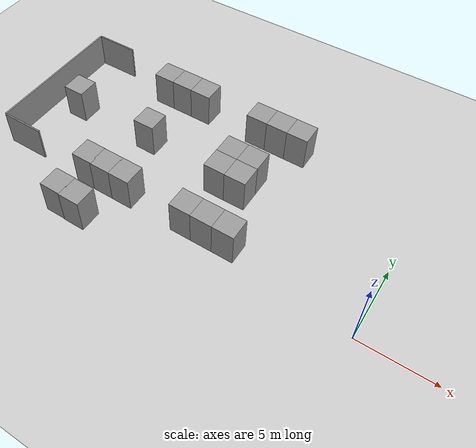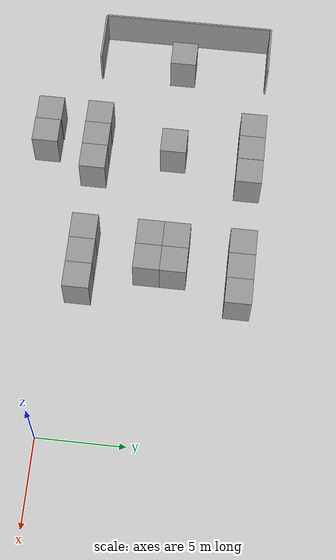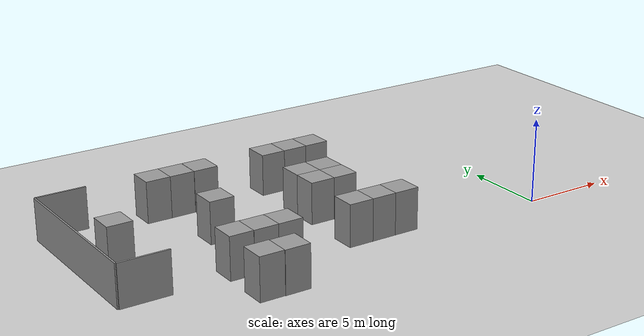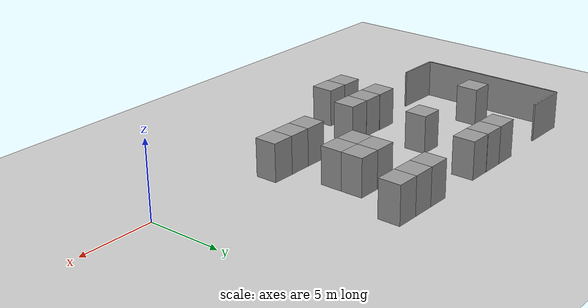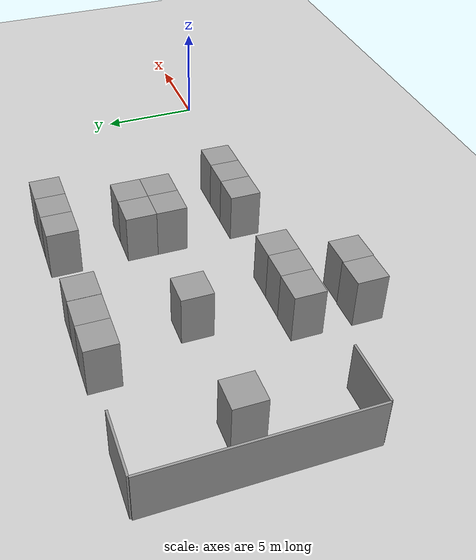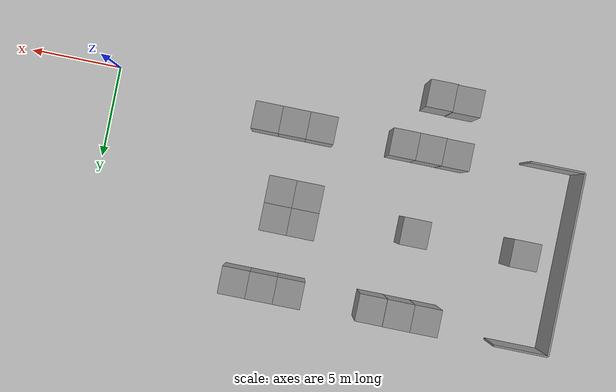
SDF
<sdf version="1.6">
 <world name="default">
  <model name="ground_plane">
   <static>1</static>
   <link name="link">
    <collision name="collision">
     <geometry><plane><normal>0 0 1</normal><size>100 100</size></plane></geometry>
     <surface><friction><ode><mu>100</mu><mu2>50</mu2></ode></friction></surface>
    </collision>
    <visual name="visual">
     <cast_shadows>0</cast_shadows>
     <geometry><plane><normal>0 0 1</normal><size>100 100</size></plane></geometry>
     <material>
      <script><uri>file://media/materials/scripts/gazebo.material</uri><name>Gazebo/Grey</name></script>
     </material>
    </visual>
   </link>
  </model>
  <model name="wall_1.5_1.5_96">
   <link name="Wall_2">
    <inertial>
     <mass>10</mass>
     <inertia><ixx>1</ixx><ixy>0</ixy><ixz>0</ixz><iyy>1</iyy><iyz>0</iyz><izz>1</izz></inertia>
    </inertial>
    <visual name="Wall_2_Visual">
     <pose>0 0 1.25 0 -0 0</pose>
     <geometry><box><size>1.5 1.5 2.5</size></box></geometry>
     <material>
      <script><uri>file://media/materials/scripts/gazebo.material</uri><name>Gazebo/Grey</name></script>
      <ambient>1 1 1 1</ambient>
      <diffuse>0.7 0.7 0.7 1</diffuse>
      <specular>0.01 0.01 0.01 1</specular>
      <emissive>0 0 0 1</emissive>
      <shader type="vertex"><normal_map>__default__</normal_map></shader>
     </material>
    </visual>
    <collision name="Wall_2_Collision">
     <pose>0 0 1.25 0 -0 0</pose>
     <geometry><box><size>1.5 1.5 2.5</size></box></geometry>
     <surface>
      <friction>
       <ode><mu>1</mu><mu2>1</mu2><fdir1>0 0 0</fdir1><slip1>0</slip1><slip2>0</slip2></ode>
       <torsional>
        <coefficient>1</coefficient>
        <patch_radius>0</patch_radius>
        <surface_radius>0</surface_radius>
        <use_patch_radius>1</use_patch_radius>
        <ode><slip>0</slip></ode>
       </torsional>
      </friction>
      <bounce><restitution_coefficient>0</restitution_coefficient><threshold>1e+06</threshold></bounce>
      <contact>
       <collide_without_contact>0</collide_without_contact>
       <collide_without_contact_bitmask>1</collide_without_contact_bitmask>
       <collide_bitmask>1</collide_bitmask>
       <ode>
        <soft_cfm>0</soft_cfm>
        <soft_erp>0.2</soft_erp>
        <kp>1e+13</kp>
        <kd>1</kd>
        <max_vel>0.01</max_vel>
        <min_depth>0</min_depth>
       </ode>
       <bullet>
        <split_impulse>1</split_impulse>
        <split_impulse_penetration_threshold>-0.01</split_impulse_penetration_threshold>
        <soft_cfm>0</soft_cfm>
        <soft_erp>0.2</soft_erp>
        <kp>1e+13</kp>
        <kd>1</kd>
       </bullet>
      </contact>
     </surface>
    </collision>
   </link>
   <static>1</static>
   <pose>-8.75 1.25 0 0 -0 0</pose>
  </model>
  <model name="wall_1.5_1.5_99">
   <link name="Wall_2">
    <inertial>
     <mass>10</mass>
     <inertia><ixx>1</ixx><ixy>0</ixy><ixz>0</ixz><iyy>1</iyy><iyz>0</iyz><izz>1</izz></inertia>
    </inertial>
    <visual name="Wall_2_Visual">
     <pose>0 0 1.25 0 -0 0</pose>
     <geometry><box><size>1.5 1.5 2.5</size></box></geometry>
     <material>
      <script><uri>file://media/materials/scripts/gazebo.material</uri><name>Gazebo/Grey</name></script>
      <ambient>1 1 1 1</ambient>
      <diffuse>0.7 0.7 0.7 1</diffuse>
      <specular>0.01 0.01 0.01 1</specular>
      <emissive>0 0 0 1</emissive>
      <shader type="vertex"><normal_map>__default__</normal_map></shader>
     </material>
    </visual>
    <collision name="Wall_2_Collision">
     <pose>0 0 1.25 0 -0 0</pose>
     <geometry><box><size>1.5 1.5 2.5</size></box></geometry>
     <surface>
      <friction>
       <ode><mu>1</mu><mu2>1</mu2><fdir1>0 0 0</fdir1><slip1>0</slip1><slip2>0</slip2></ode>
       <torsional>
        <coefficient>1</coefficient>
        <patch_radius>0</patch_radius>
        <surface_radius>0</surface_radius>
        <use_patch_radius>1</use_patch_radius>
        <ode><slip>0</slip></ode>
       </torsional>
      </friction>
      <bounce><restitution_coefficient>0</restitution_coefficient><threshold>1e+06</threshold></bounce>
      <contact>
       <collide_without_contact>0</collide_without_contact>
       <collide_without_contact_bitmask>1</collide_without_contact_bitmask>
       <collide_bitmask>1</collide_bitmask>
       <ode>
        <soft_cfm>0</soft_cfm>
        <soft_erp>0.2</soft_erp>
        <kp>1e+13</kp>
        <kd>1</kd>
        <max_vel>0.01</max_vel>
        <min_depth>0</min_depth>
       </ode>
       <bullet>
        <split_impulse>1</split_impulse>
        <split_impulse_penetration_threshold>-0.01</split_impulse_penetration_threshold>
        <soft_cfm>0</soft_cfm>
        <soft_erp>0.2</soft_erp>
        <kp>1e+13</kp>
        <kd>1</kd>
       </bullet>
      </contact>
     </surface>
    </collision>
   </link>
   <static>1</static>
   <pose>-10.25 1.25 0 0 -0 0</pose>
  </model>
  <model name="wall_1.5_1.5_100">
   <link name="Wall_2">
    <inertial>
     <mass>10</mass>
     <inertia><ixx>1</ixx><ixy>0</ixy><ixz>0</ixz><iyy>1</iyy><iyz>0</iyz><izz>1</izz></inertia>
    </inertial>
    <visual name="Wall_2_Visual">
     <pose>0 0 1.25 0 -0 0</pose>
     <geometry><box><size>1.5 1.5 2.5</size></box></geometry>
     <material>
      <script><uri>file://media/materials/scripts/gazebo.material</uri><name>Gazebo/Grey</name></script>
      <ambient>1 1 1 1</ambient>
      <diffuse>0.7 0.7 0.7 1</diffuse>
      <specular>0.01 0.01 0.01 1</specular>
      <emissive>0 0 0 1</emissive>
      <shader type="vertex"><normal_map>__default__</normal_map></shader>
     </material>
    </visual>
    <collision name="Wall_2_Collision">
     <pose>0 0 1.25 0 -0 0</pose>
     <geometry><box><size>1.5 1.5 2.5</size></box></geometry>
     <surface>
      <friction>
       <ode><mu>1</mu><mu2>1</mu2><fdir1>0 0 0</fdir1><slip1>0</slip1><slip2>0</slip2></ode>
       <torsional>
        <coefficient>1</coefficient>
        <patch_radius>0</patch_radius>
        <surface_radius>0</surface_radius>
        <use_patch_radius>1</use_patch_radius>
        <ode><slip>0</slip></ode>
       </torsional>
      </friction>
      <bounce><restitution_coefficient>0</restitution_coefficient><threshold>1e+06</threshold></bounce>
      <contact>
       <collide_without_contact>0</collide_without_contact>
       <collide_without_contact_bitmask>1</collide_without_contact_bitmask>
       <collide_bitmask>1</collide_bitmask>
       <ode>
        <soft_cfm>0</soft_cfm>
        <soft_erp>0.2</soft_erp>
        <kp>1e+13</kp>
        <kd>1</kd>
        <max_vel>0.01</max_vel>
        <min_depth>0</min_depth>
       </ode>
       <bullet>
        <split_impulse>1</split_impulse>
        <split_impulse_penetration_threshold>-0.01</split_impulse_penetration_threshold>
        <soft_cfm>0</soft_cfm>
        <soft_erp>0.2</soft_erp>
        <kp>1e+13</kp>
        <kd>1</kd>
       </bullet>
      </contact>
     </surface>
    </collision>
   </link>
   <static>1</static>
   <pose>-11.75 1.25 0 0 -0 0</pose>
  </model>
  <model name="wall_1.5_1.5_103">
   <link name="Wall_2">
    <inertial>
     <mass>10</mass>
     <inertia><ixx>1</ixx><ixy>0</ixy><ixz>0</ixz><iyy>1</iyy><iyz>0</iyz><izz>1</izz></inertia>
    </inertial>
    <visual name="Wall_2_Visual">
     <pose>0 0 1.25 0 -0 0</pose>
     <geometry><box><size>1.5 1.5 2.5</size></box></geometry>
     <material>
      <script><uri>file://media/materials/scripts/gazebo.material</uri><name>Gazebo/Grey</name></script>
      <ambient>1 1 1 1</ambient>
      <diffuse>0.7 0.7 0.7 1</diffuse>
      <specular>0.01 0.01 0.01 1</specular>
      <emissive>0 0 0 1</emissive>
      <shader type="vertex"><normal_map>__default__</normal_map></shader>
     </material>
    </visual>
    <collision name="Wall_2_Collision">
     <pose>0 0 1.25 0 -0 0</pose>
     <geometry><box><size>1.5 1.5 2.5</size></box></geometry>
     <surface>
      <friction>
       <ode><mu>1</mu><mu2>1</mu2><fdir1>0 0 0</fdir1><slip1>0</slip1><slip2>0</slip2></ode>
       <torsional>
        <coefficient>1</coefficient>
        <patch_radius>0</patch_radius>
        <surface_radius>0</surface_radius>
        <use_patch_radius>1</use_patch_radius>
        <ode><slip>0</slip></ode>
       </torsional>
      </friction>
      <bounce><restitution_coefficient>0</restitution_coefficient><threshold>1e+06</threshold></bounce>
      <contact>
       <collide_without_contact>0</collide_without_contact>
       <collide_without_contact_bitmask>1</collide_without_contact_bitmask>
       <collide_bitmask>1</collide_bitmask>
       <ode>
        <soft_cfm>0</soft_cfm>
        <soft_erp>0.2</soft_erp>
        <kp>1e+13</kp>
        <kd>1</kd>
        <max_vel>0.01</max_vel>
        <min_depth>0</min_depth>
       </ode>
       <bullet>
        <split_impulse>1</split_impulse>
        <split_impulse_penetration_threshold>-0.01</split_impulse_penetration_threshold>
        <soft_cfm>0</soft_cfm>
        <soft_erp>0.2</soft_erp>
        <kp>1e+13</kp>
        <kd>1</kd>
       </bullet>
      </contact>
     </surface>
    </collision>
   </link>
   <static>1</static>
   <pose>-10.25 5 0 0 -0 0</pose>
  </model>
  <model name="wall_1.5_1.5_104">
   <link name="Wall_2">
    <inertial>
     <mass>10</mass>
     <inertia><ixx>1</ixx><ixy>0</ixy><ixz>0</ixz><iyy>1</iyy><iyz>0</iyz><izz>1</izz></inertia>
    </inertial>
    <visual name="Wall_2_Visual">
     <pose>0 0 1.25 0 -0 0</pose>
     <geometry><box><size>1.5 1.5 2.5</size></box></geometry>
     <material>
      <script><uri>file://media/materials/scripts/gazebo.material</uri><name>Gazebo/Grey</name></script>
      <ambient>1 1 1 1</ambient>
      <diffuse>0.7 0.7 0.7 1</diffuse>
      <specular>0.01 0.01 0.01 1</specular>
      <emissive>0 0 0 1</emissive>
      <shader type="vertex"><normal_map>__default__</normal_map></shader>
     </material>
    </visual>
    <collision name="Wall_2_Collision">
     <pose>0 0 1.25 0 -0 0</pose>
     <geometry><box><size>1.5 1.5 2.5</size></box></geometry>
     <surface>
      <friction>
       <ode><mu>1</mu><mu2>1</mu2><fdir1>0 0 0</fdir1><slip1>0</slip1><slip2>0</slip2></ode>
       <torsional>
        <coefficient>1</coefficient>
        <patch_radius>0</patch_radius>
        <surface_radius>0</surface_radius>
        <use_patch_radius>1</use_patch_radius>
        <ode><slip>0</slip></ode>
       </torsional>
      </friction>
      <bounce><restitution_coefficient>0</restitution_coefficient><threshold>1e+06</threshold></bounce>
      <contact>
       <collide_without_contact>0</collide_without_contact>
       <collide_without_contact_bitmask>1</collide_without_contact_bitmask>
       <collide_bitmask>1</collide_bitmask>
       <ode>
        <soft_cfm>0</soft_cfm>
        <soft_erp>0.2</soft_erp>
        <kp>1e+13</kp>
        <kd>1</kd>
        <max_vel>0.01</max_vel>
        <min_depth>0</min_depth>
       </ode>
       <bullet>
        <split_impulse>1</split_impulse>
        <split_impulse_penetration_threshold>-0.01</split_impulse_penetration_threshold>
        <soft_cfm>0</soft_cfm>
        <soft_erp>0.2</soft_erp>
        <kp>1e+13</kp>
        <kd>1</kd>
       </bullet>
      </contact>
     </surface>
    </collision>
   </link>
   <static>1</static>
   <pose>-11.75 5 0 0 -0 0</pose>
  </model>
  <model name="wall_1.5_1.5_105">
   <link name="Wall_2">
    <inertial>
     <mass>10</mass>
     <inertia><ixx>1</ixx><ixy>0</ixy><ixz>0</ixz><iyy>1</iyy><iyz>0</iyz><izz>1</izz></inertia>
    </inertial>
    <visual name="Wall_2_Visual">
     <pose>0 0 1.25 0 -0 0</pose>
     <geometry><box><size>1.5 1.5 2.5</size></box></geometry>
     <material>
      <script><uri>file://media/materials/scripts/gazebo.material</uri><name>Gazebo/Grey</name></script>
      <ambient>1 1 1 1</ambient>
      <diffuse>0.7 0.7 0.7 1</diffuse>
      <specular>0.01 0.01 0.01 1</specular>
      <emissive>0 0 0 1</emissive>
      <shader type="vertex"><normal_map>__default__</normal_map></shader>
     </material>
    </visual>
    <collision name="Wall_2_Collision">
     <pose>0 0 1.25 0 -0 0</pose>
     <geometry><box><size>1.5 1.5 2.5</size></box></geometry>
     <surface>
      <friction>
       <ode><mu>1</mu><mu2>1</mu2><fdir1>0 0 0</fdir1><slip1>0</slip1><slip2>0</slip2></ode>
       <torsional>
        <coefficient>1</coefficient>
        <patch_radius>0</patch_radius>
        <surface_radius>0</surface_radius>
        <use_patch_radius>1</use_patch_radius>
        <ode><slip>0</slip></ode>
       </torsional>
      </friction>
      <bounce><restitution_coefficient>0</restitution_coefficient><threshold>1e+06</threshold></bounce>
      <contact>
       <collide_without_contact>0</collide_without_contact>
       <collide_without_contact_bitmask>1</collide_without_contact_bitmask>
       <collide_bitmask>1</collide_bitmask>
       <ode>
        <soft_cfm>0</soft_cfm>
        <soft_erp>0.2</soft_erp>
        <kp>1e+13</kp>
        <kd>1</kd>
        <max_vel>0.01</max_vel>
        <min_depth>0</min_depth>
       </ode>
       <bullet>
        <split_impulse>1</split_impulse>
        <split_impulse_penetration_threshold>-0.01</split_impulse_penetration_threshold>
        <soft_cfm>0</soft_cfm>
        <soft_erp>0.2</soft_erp>
        <kp>1e+13</kp>
        <kd>1</kd>
       </bullet>
      </contact>
     </surface>
    </collision>
   </link>
   <static>1</static>
   <pose>-10.25 6.5 0 0 -0 0</pose>
  </model>
  <model name="wall_1.5_1.5_106">
   <link name="Wall_2">
    <inertial>
     <mass>10</mass>
     <inertia><ixx>1</ixx><ixy>0</ixy><ixz>0</ixz><iyy>1</iyy><iyz>0</iyz><izz>1</izz></inertia>
    </inertial>
    <visual name="Wall_2_Visual">
     <pose>0 0 1.25 0 -0 0</pose>
     <geometry><box><size>1.5 1.5 2.5</size></box></geometry>
     <material>
      <script><uri>file://media/materials/scripts/gazebo.material</uri><name>Gazebo/Grey</name></script>
      <ambient>1 1 1 1</ambient>
      <diffuse>0.7 0.7 0.7 1</diffuse>
      <specular>0.01 0.01 0.01 1</specular>
      <emissive>0 0 0 1</emissive>
      <shader type="vertex"><normal_map>__default__</normal_map></shader>
     </material>
    </visual>
    <collision name="Wall_2_Collision">
     <pose>0 0 1.25 0 -0 0</pose>
     <geometry><box><size>1.5 1.5 2.5</size></box></geometry>
     <surface>
      <friction>
       <ode><mu>1</mu><mu2>1</mu2><fdir1>0 0 0</fdir1><slip1>0</slip1><slip2>0</slip2></ode>
       <torsional>
        <coefficient>1</coefficient>
        <patch_radius>0</patch_radius>
        <surface_radius>0</surface_radius>
        <use_patch_radius>1</use_patch_radius>
        <ode><slip>0</slip></ode>
       </torsional>
      </friction>
      <bounce><restitution_coefficient>0</restitution_coefficient><threshold>1e+06</threshold></bounce>
      <contact>
       <collide_without_contact>0</collide_without_contact>
       <collide_without_contact_bitmask>1</collide_without_contact_bitmask>
       <collide_bitmask>1</collide_bitmask>
       <ode>
        <soft_cfm>0</soft_cfm>
        <soft_erp>0.2</soft_erp>
        <kp>1e+13</kp>
        <kd>1</kd>
        <max_vel>0.01</max_vel>
        <min_depth>0</min_depth>
       </ode>
       <bullet>
        <split_impulse>1</split_impulse>
        <split_impulse_penetration_threshold>-0.01</split_impulse_penetration_threshold>
        <soft_cfm>0</soft_cfm>
        <soft_erp>0.2</soft_erp>
        <kp>1e+13</kp>
        <kd>1</kd>
       </bullet>
      </contact>
     </surface>
    </collision>
   </link>
   <static>1</static>
   <pose>-11.75 6.5 0 0 -0 0</pose>
  </model>
  <model name="wall_1.5_1.5_107">
   <link name="Wall_2">
    <inertial>
     <mass>10</mass>
     <inertia><ixx>1</ixx><ixy>0</ixy><ixz>0</ixz><iyy>1</iyy><iyz>0</iyz><izz>1</izz></inertia>
    </inertial>
    <visual name="Wall_2_Visual">
     <pose>0 0 1.25 0 -0 0</pose>
     <geometry><box><size>1.5 1.5 2.5</size></box></geometry>
     <material>
      <script><uri>file://media/materials/scripts/gazebo.material</uri><name>Gazebo/Grey</name></script>
      <ambient>1 1 1 1</ambient>
      <diffuse>0.7 0.7 0.7 1</diffuse>
      <specular>0.01 0.01 0.01 1</specular>
      <emissive>0 0 0 1</emissive>
      <shader type="vertex"><normal_map>__default__</normal_map></shader>
     </material>
    </visual>
    <collision name="Wall_2_Collision">
     <pose>0 0 1.25 0 -0 0</pose>
     <geometry><box><size>1.5 1.5 2.5</size></box></geometry>
     <surface>
      <friction>
       <ode><mu>1</mu><mu2>1</mu2><fdir1>0 0 0</fdir1><slip1>0</slip1><slip2>0</slip2></ode>
       <torsional>
        <coefficient>1</coefficient>
        <patch_radius>0</patch_radius>
        <surface_radius>0</surface_radius>
        <use_patch_radius>1</use_patch_radius>
        <ode><slip>0</slip></ode>
       </torsional>
      </friction>
      <bounce><restitution_coefficient>0</restitution_coefficient><threshold>1e+06</threshold></bounce>
      <contact>
       <collide_without_contact>0</collide_without_contact>
       <collide_without_contact_bitmask>1</collide_without_contact_bitmask>
       <collide_bitmask>1</collide_bitmask>
       <ode>
        <soft_cfm>0</soft_cfm>
        <soft_erp>0.2</soft_erp>
        <kp>1e+13</kp>
        <kd>1</kd>
        <max_vel>0.01</max_vel>
        <min_depth>0</min_depth>
       </ode>
       <bullet>
        <split_impulse>1</split_impulse>
        <split_impulse_penetration_threshold>-0.01</split_impulse_penetration_threshold>
        <soft_cfm>0</soft_cfm>
        <soft_erp>0.2</soft_erp>
        <kp>1e+13</kp>
        <kd>1</kd>
       </bullet>
      </contact>
     </surface>
    </collision>
   </link>
   <static>1</static>
   <pose>-8.75 10.25 0 0 -0 0</pose>
  </model>
  <model name="wall_1.5_1.5_108">
   <link name="Wall_2">
    <inertial>
     <mass>10</mass>
     <inertia><ixx>1</ixx><ixy>0</ixy><ixz>0</ixz><iyy>1</iyy><iyz>0</iyz><izz>1</izz></inertia>
    </inertial>
    <visual name="Wall_2_Visual">
     <pose>0 0 1.25 0 -0 0</pose>
     <geometry><box><size>1.5 1.5 2.5</size></box></geometry>
     <material>
      <script><uri>file://media/materials/scripts/gazebo.material</uri><name>Gazebo/Grey</name></script>
      <ambient>1 1 1 1</ambient>
      <diffuse>0.7 0.7 0.7 1</diffuse>
      <specular>0.01 0.01 0.01 1</specular>
      <emissive>0 0 0 1</emissive>
      <shader type="vertex"><normal_map>__default__</normal_map></shader>
     </material>
    </visual>
    <collision name="Wall_2_Collision">
     <pose>0 0 1.25 0 -0 0</pose>
     <geometry><box><size>1.5 1.5 2.5</size></box></geometry>
     <surface>
      <friction>
       <ode><mu>1</mu><mu2>1</mu2><fdir1>0 0 0</fdir1><slip1>0</slip1><slip2>0</slip2></ode>
       <torsional>
        <coefficient>1</coefficient>
        <patch_radius>0</patch_radius>
        <surface_radius>0</surface_radius>
        <use_patch_radius>1</use_patch_radius>
        <ode><slip>0</slip></ode>
       </torsional>
      </friction>
      <bounce><restitution_coefficient>0</restitution_coefficient><threshold>1e+06</threshold></bounce>
      <contact>
       <collide_without_contact>0</collide_without_contact>
       <collide_without_contact_bitmask>1</collide_without_contact_bitmask>
       <collide_bitmask>1</collide_bitmask>
       <ode>
        <soft_cfm>0</soft_cfm>
        <soft_erp>0.2</soft_erp>
        <kp>1e+13</kp>
        <kd>1</kd>
        <max_vel>0.01</max_vel>
        <min_depth>0</min_depth>
       </ode>
       <bullet>
        <split_impulse>1</split_impulse>
        <split_impulse_penetration_threshold>-0.01</split_impulse_penetration_threshold>
        <soft_cfm>0</soft_cfm>
        <soft_erp>0.2</soft_erp>
        <kp>1e+13</kp>
        <kd>1</kd>
       </bullet>
      </contact>
     </surface>
    </collision>
   </link>
   <static>1</static>
   <pose>-10.25 10.25 0 0 -0 0</pose>
  </model>
  <model name="wall_1.5_1.5_109">
   <link name="Wall_2">
    <inertial>
     <mass>10</mass>
     <inertia><ixx>1</ixx><ixy>0</ixy><ixz>0</ixz><iyy>1</iyy><iyz>0</iyz><izz>1</izz></inertia>
    </inertial>
    <visual name="Wall_2_Visual">
     <pose>0 0 1.25 0 -0 0</pose>
     <geometry><box><size>1.5 1.5 2.5</size></box></geometry>
     <material>
      <script><uri>file://media/materials/scripts/gazebo.material</uri><name>Gazebo/Grey</name></script>
      <ambient>1 1 1 1</ambient>
      <diffuse>0.7 0.7 0.7 1</diffuse>
      <specular>0.01 0.01 0.01 1</specular>
      <emissive>0 0 0 1</emissive>
      <shader type="vertex"><normal_map>__default__</normal_map></shader>
     </material>
    </visual>
    <collision name="Wall_2_Collision">
     <pose>0 0 1.25 0 -0 0</pose>
     <geometry><box><size>1.5 1.5 2.5</size></box></geometry>
     <surface>
      <friction>
       <ode><mu>1</mu><mu2>1</mu2><fdir1>0 0 0</fdir1><slip1>0</slip1><slip2>0</slip2></ode>
       <torsional>
        <coefficient>1</coefficient>
        <patch_radius>0</patch_radius>
        <surface_radius>0</surface_radius>
        <use_patch_radius>1</use_patch_radius>
        <ode><slip>0</slip></ode>
       </torsional>
      </friction>
      <bounce><restitution_coefficient>0</restitution_coefficient><threshold>1e+06</threshold></bounce>
      <contact>
       <collide_without_contact>0</collide_without_contact>
       <collide_without_contact_bitmask>1</collide_without_contact_bitmask>
       <collide_bitmask>1</collide_bitmask>
       <ode>
        <soft_cfm>0</soft_cfm>
        <soft_erp>0.2</soft_erp>
        <kp>1e+13</kp>
        <kd>1</kd>
        <max_vel>0.01</max_vel>
        <min_depth>0</min_depth>
       </ode>
       <bullet>
        <split_impulse>1</split_impulse>
        <split_impulse_penetration_threshold>-0.01</split_impulse_penetration_threshold>
        <soft_cfm>0</soft_cfm>
        <soft_erp>0.2</soft_erp>
        <kp>1e+13</kp>
        <kd>1</kd>
       </bullet>
      </contact>
     </surface>
    </collision>
   </link>
   <static>1</static>
   <pose>-11.75 10.25 0 0 -0 0</pose>
  </model>
  <model name="wall_1.5_1.5_120">
   <link name="Wall_2">
    <inertial>
     <mass>10</mass>
     <inertia><ixx>1</ixx><ixy>0</ixy><ixz>0</ixz><iyy>1</iyy><iyz>0</iyz><izz>1</izz></inertia>
    </inertial>
    <visual name="Wall_2_Visual">
     <pose>0 0 1.25 0 -0 0</pose>
     <geometry><box><size>1.5 1.5 2.5</size></box></geometry>
     <material>
      <script><uri>file://media/materials/scripts/gazebo.material</uri><name>Gazebo/Grey</name></script>
      <ambient>1 1 1 1</ambient>
      <diffuse>0.7 0.7 0.7 1</diffuse>
      <specular>0.01 0.01 0.01 1</specular>
      <emissive>0 0 0 1</emissive>
      <shader type="vertex"><normal_map>__default__</normal_map></shader>
     </material>
    </visual>
    <collision name="Wall_2_Collision">
     <pose>0 0 1.25 0 -0 0</pose>
     <geometry><box><size>1.5 1.5 2.5</size></box></geometry>
     <surface>
      <friction>
       <ode><mu>1</mu><mu2>1</mu2><fdir1>0 0 0</fdir1><slip1>0</slip1><slip2>0</slip2></ode>
       <torsional>
        <coefficient>1</coefficient>
        <patch_radius>0</patch_radius>
        <surface_radius>0</surface_radius>
        <use_patch_radius>1</use_patch_radius>
        <ode><slip>0</slip></ode>
       </torsional>
      </friction>
      <bounce><restitution_coefficient>0</restitution_coefficient><threshold>1e+06</threshold></bounce>
      <contact>
       <collide_without_contact>0</collide_without_contact>
       <collide_without_contact_bitmask>1</collide_without_contact_bitmask>
       <collide_bitmask>1</collide_bitmask>
       <ode>
        <soft_cfm>0</soft_cfm>
        <soft_erp>0.2</soft_erp>
        <kp>1e+13</kp>
        <kd>1</kd>
        <max_vel>0.01</max_vel>
        <min_depth>0</min_depth>
       </ode>
       <bullet>
        <split_impulse>1</split_impulse>
        <split_impulse_penetration_threshold>-0.01</split_impulse_penetration_threshold>
        <soft_cfm>0</soft_cfm>
        <soft_erp>0.2</soft_erp>
        <kp>1e+13</kp>
        <kd>1</kd>
       </bullet>
      </contact>
     </surface>
    </collision>
   </link>
   <static>1</static>
   <pose>-16.2587 1.19643 0 0 -0 0</pose>
  </model>
  <model name="wall_1.5_1.5_121">
   <link name="Wall_2">
    <inertial>
     <mass>10</mass>
     <inertia><ixx>1</ixx><ixy>0</ixy><ixz>0</ixz><iyy>1</iyy><iyz>0</iyz><izz>1</izz></inertia>
    </inertial>
    <visual name="Wall_2_Visual">
     <pose>0 0 1.25 0 -0 0</pose>
     <geometry><box><size>1.5 1.5 2.5</size></box></geometry>
     <material>
      <script><uri>file://media/materials/scripts/gazebo.material</uri><name>Gazebo/Grey</name></script>
      <ambient>1 1 1 1</ambient>
      <diffuse>0.7 0.7 0.7 1</diffuse>
      <specular>0.01 0.01 0.01 1</specular>
      <emissive>0 0 0 1</emissive>
      <shader type="vertex"><normal_map>__default__</normal_map></shader>
     </material>
    </visual>
    <collision name="Wall_2_Collision">
     <pose>0 0 1.25 0 -0 0</pose>
     <geometry><box><size>1.5 1.5 2.5</size></box></geometry>
     <surface>
      <friction>
       <ode><mu>1</mu><mu2>1</mu2><fdir1>0 0 0</fdir1><slip1>0</slip1><slip2>0</slip2></ode>
       <torsional>
        <coefficient>1</coefficient>
        <patch_radius>0</patch_radius>
        <surface_radius>0</surface_radius>
        <use_patch_radius>1</use_patch_radius>
        <ode><slip>0</slip></ode>
       </torsional>
      </friction>
      <bounce><restitution_coefficient>0</restitution_coefficient><threshold>1e+06</threshold></bounce>
      <contact>
       <collide_without_contact>0</collide_without_contact>
       <collide_without_contact_bitmask>1</collide_without_contact_bitmask>
       <collide_bitmask>1</collide_bitmask>
       <ode>
        <soft_cfm>0</soft_cfm>
        <soft_erp>0.2</soft_erp>
        <kp>1e+13</kp>
        <kd>1</kd>
        <max_vel>0.01</max_vel>
        <min_depth>0</min_depth>
       </ode>
       <bullet>
        <split_impulse>1</split_impulse>
        <split_impulse_penetration_threshold>-0.01</split_impulse_penetration_threshold>
        <soft_cfm>0</soft_cfm>
        <soft_erp>0.2</soft_erp>
        <kp>1e+13</kp>
        <kd>1</kd>
       </bullet>
      </contact>
     </surface>
    </collision>
   </link>
   <static>1</static>
   <pose>-17.6936 -1.74466 0 0 -0 0</pose>
  </model>
  <model name="wall_1.5_1.5_122">
   <link name="Wall_2">
    <inertial>
     <mass>10</mass>
     <inertia><ixx>1</ixx><ixy>0</ixy><ixz>0</ixz><iyy>1</iyy><iyz>0</iyz><izz>1</izz></inertia>
    </inertial>
    <visual name="Wall_2_Visual">
     <pose>0 0 1.25 0 -0 0</pose>
     <geometry><box><size>1.5 1.5 2.5</size></box></geometry>
     <material>
      <script><uri>file://media/materials/scripts/gazebo.material</uri><name>Gazebo/Grey</name></script>
      <ambient>1 1 1 1</ambient>
      <diffuse>0.7 0.7 0.7 1</diffuse>
      <specular>0.01 0.01 0.01 1</specular>
      <emissive>0 0 0 1</emissive>
      <shader type="vertex"><normal_map>__default__</normal_map></shader>
     </material>
    </visual>
    <collision name="Wall_2_Collision">
     <pose>0 0 1.25 0 -0 0</pose>
     <geometry><box><size>1.5 1.5 2.5</size></box></geometry>
     <surface>
      <friction>
       <ode><mu>1</mu><mu2>1</mu2><fdir1>0 0 0</fdir1><slip1>0</slip1><slip2>0</slip2></ode>
       <torsional>
        <coefficient>1</coefficient>
        <patch_radius>0</patch_radius>
        <surface_radius>0</surface_radius>
        <use_patch_radius>1</use_patch_radius>
        <ode><slip>0</slip></ode>
       </torsional>
      </friction>
      <bounce><restitution_coefficient>0</restitution_coefficient><threshold>1e+06</threshold></bounce>
      <contact>
       <collide_without_contact>0</collide_without_contact>
       <collide_without_contact_bitmask>1</collide_without_contact_bitmask>
       <collide_bitmask>1</collide_bitmask>
       <ode>
        <soft_cfm>0</soft_cfm>
        <soft_erp>0.2</soft_erp>
        <kp>1e+13</kp>
        <kd>1</kd>
        <max_vel>0.01</max_vel>
        <min_depth>0</min_depth>
       </ode>
       <bullet>
        <split_impulse>1</split_impulse>
        <split_impulse_penetration_threshold>-0.01</split_impulse_penetration_threshold>
        <soft_cfm>0</soft_cfm>
        <soft_erp>0.2</soft_erp>
        <kp>1e+13</kp>
        <kd>1</kd>
       </bullet>
      </contact>
     </surface>
    </collision>
   </link>
   <static>1</static>
   <pose>-19.1573 -1.71436 0 0 -0 0</pose>
  </model>
  <model name="wall_1.5_1.5_123">
   <link name="Wall_2">
    <inertial>
     <mass>10</mass>
     <inertia><ixx>1</ixx><ixy>0</ixy><ixz>0</ixz><iyy>1</iyy><iyz>0</iyz><izz>1</izz></inertia>
    </inertial>
    <visual name="Wall_2_Visual">
     <pose>0 0 1.25 0 -0 0</pose>
     <geometry><box><size>1.5 1.5 2.5</size></box></geometry>
     <material>
      <script><uri>file://media/materials/scripts/gazebo.material</uri><name>Gazebo/Grey</name></script>
      <ambient>1 1 1 1</ambient>
      <diffuse>0.7 0.7 0.7 1</diffuse>
      <specular>0.01 0.01 0.01 1</specular>
      <emissive>0 0 0 1</emissive>
      <shader type="vertex"><normal_map>__default__</normal_map></shader>
     </material>
    </visual>
    <collision name="Wall_2_Collision">
     <pose>0 0 1.25 0 -0 0</pose>
     <geometry><box><size>1.5 1.5 2.5</size></box></geometry>
     <surface>
      <friction>
       <ode><mu>1</mu><mu2>1</mu2><fdir1>0 0 0</fdir1><slip1>0</slip1><slip2>0</slip2></ode>
       <torsional>
        <coefficient>1</coefficient>
        <patch_radius>0</patch_radius>
        <surface_radius>0</surface_radius>
        <use_patch_radius>1</use_patch_radius>
        <ode><slip>0</slip></ode>
       </torsional>
      </friction>
      <bounce><restitution_coefficient>0</restitution_coefficient><threshold>1e+06</threshold></bounce>
      <contact>
       <collide_without_contact>0</collide_without_contact>
       <collide_without_contact_bitmask>1</collide_without_contact_bitmask>
       <collide_bitmask>1</collide_bitmask>
       <ode>
        <soft_cfm>0</soft_cfm>
        <soft_erp>0.2</soft_erp>
        <kp>1e+13</kp>
        <kd>1</kd>
        <max_vel>0.01</max_vel>
        <min_depth>0</min_depth>
       </ode>
       <bullet>
        <split_impulse>1</split_impulse>
        <split_impulse_penetration_threshold>-0.01</split_impulse_penetration_threshold>
        <soft_cfm>0</soft_cfm>
        <soft_erp>0.2</soft_erp>
        <kp>1e+13</kp>
        <kd>1</kd>
       </bullet>
      </contact>
     </surface>
    </collision>
   </link>
   <static>1</static>
   <pose>-17.7217 1.19928 0 0 -0 0</pose>
  </model>
  <model name="wall_1.5_1.5_124">
   <link name="Wall_2">
    <inertial>
     <mass>10</mass>
     <inertia><ixx>1</ixx><ixy>0</ixy><ixz>0</ixz><iyy>1</iyy><iyz>0</iyz><izz>1</izz></inertia>
    </inertial>
    <visual name="Wall_2_Visual">
     <pose>0 0 1.25 0 -0 0</pose>
     <geometry><box><size>1.5 1.5 2.5</size></box></geometry>
     <material>
      <script><uri>file://media/materials/scripts/gazebo.material</uri><name>Gazebo/Grey</name></script>
      <ambient>1 1 1 1</ambient>
      <diffuse>0.7 0.7 0.7 1</diffuse>
      <specular>0.01 0.01 0.01 1</specular>
      <emissive>0 0 0 1</emissive>
      <shader type="vertex"><normal_map>__default__</normal_map></shader>
     </material>
    </visual>
    <collision name="Wall_2_Collision">
     <pose>0 0 1.25 0 -0 0</pose>
     <geometry><box><size>1.5 1.5 2.5</size></box></geometry>
     <surface>
      <friction>
       <ode><mu>1</mu><mu2>1</mu2><fdir1>0 0 0</fdir1><slip1>0</slip1><slip2>0</slip2></ode>
       <torsional>
        <coefficient>1</coefficient>
        <patch_radius>0</patch_radius>
        <surface_radius>0</surface_radius>
        <use_patch_radius>1</use_patch_radius>
        <ode><slip>0</slip></ode>
       </torsional>
      </friction>
      <bounce><restitution_coefficient>0</restitution_coefficient><threshold>1e+06</threshold></bounce>
      <contact>
       <collide_without_contact>0</collide_without_contact>
       <collide_without_contact_bitmask>1</collide_without_contact_bitmask>
       <collide_bitmask>1</collide_bitmask>
       <ode>
        <soft_cfm>0</soft_cfm>
        <soft_erp>0.2</soft_erp>
        <kp>1e+13</kp>
        <kd>1</kd>
        <max_vel>0.01</max_vel>
        <min_depth>0</min_depth>
       </ode>
       <bullet>
        <split_impulse>1</split_impulse>
        <split_impulse_penetration_threshold>-0.01</split_impulse_penetration_threshold>
        <soft_cfm>0</soft_cfm>
        <soft_erp>0.2</soft_erp>
        <kp>1e+13</kp>
        <kd>1</kd>
       </bullet>
      </contact>
     </surface>
    </collision>
   </link>
   <static>1</static>
   <pose>-19.1489 1.21184 0 0 -0 0</pose>
  </model>
  <model name="wall_1.5_1.5_125">
   <link name="Wall_2">
    <inertial>
     <mass>10</mass>
     <inertia><ixx>1</ixx><ixy>0</ixy><ixz>0</ixz><iyy>1</iyy><iyz>0</iyz><izz>1</izz></inertia>
    </inertial>
    <visual name="Wall_2_Visual">
     <pose>0 0 1.25 0 -0 0</pose>
     <geometry><box><size>1.5 1.5 2.5</size></box></geometry>
     <material>
      <script><uri>file://media/materials/scripts/gazebo.material</uri><name>Gazebo/Grey</name></script>
      <ambient>1 1 1 1</ambient>
      <diffuse>0.7 0.7 0.7 1</diffuse>
      <specular>0.01 0.01 0.01 1</specular>
      <emissive>0 0 0 1</emissive>
      <shader type="vertex"><normal_map>__default__</normal_map></shader>
     </material>
    </visual>
    <collision name="Wall_2_Collision">
     <pose>0 0 1.25 0 -0 0</pose>
     <geometry><box><size>1.5 1.5 2.5</size></box></geometry>
     <surface>
      <friction>
       <ode><mu>1</mu><mu2>1</mu2><fdir1>0 0 0</fdir1><slip1>0</slip1><slip2>0</slip2></ode>
       <torsional>
        <coefficient>1</coefficient>
        <patch_radius>0</patch_radius>
        <surface_radius>0</surface_radius>
        <use_patch_radius>1</use_patch_radius>
        <ode><slip>0</slip></ode>
       </torsional>
      </friction>
      <bounce><restitution_coefficient>0</restitution_coefficient><threshold>1e+06</threshold></bounce>
      <contact>
       <collide_without_contact>0</collide_without_contact>
       <collide_without_contact_bitmask>1</collide_without_contact_bitmask>
       <collide_bitmask>1</collide_bitmask>
       <ode>
        <soft_cfm>0</soft_cfm>
        <soft_erp>0.2</soft_erp>
        <kp>1e+13</kp>
        <kd>1</kd>
        <max_vel>0.01</max_vel>
        <min_depth>0</min_depth>
       </ode>
       <bullet>
        <split_impulse>1</split_impulse>
        <split_impulse_penetration_threshold>-0.01</split_impulse_penetration_threshold>
        <soft_cfm>0</soft_cfm>
        <soft_erp>0.2</soft_erp>
        <kp>1e+13</kp>
        <kd>1</kd>
       </bullet>
      </contact>
     </surface>
    </collision>
   </link>
   <static>1</static>
   <pose>-16.2448 10.2417 0 0 -0 0</pose>
  </model>
  <model name="wall_1.5_1.5_127">
   <link name="Wall_2">
    <inertial>
     <mass>10</mass>
     <inertia><ixx>1</ixx><ixy>0</ixy><ixz>0</ixz><iyy>1</iyy><iyz>0</iyz><izz>1</izz></inertia>
    </inertial>
    <visual name="Wall_2_Visual">
     <pose>0 0 1.25 0 -0 0</pose>
     <geometry><box><size>1.5 1.5 2.5</size></box></geometry>
     <material>
      <script><uri>file://media/materials/scripts/gazebo.material</uri><name>Gazebo/Grey</name></script>
      <ambient>1 1 1 1</ambient>
      <diffuse>0.7 0.7 0.7 1</diffuse>
      <specular>0.01 0.01 0.01 1</specular>
      <emissive>0 0 0 1</emissive>
      <shader type="vertex"><normal_map>__default__</normal_map></shader>
     </material>
    </visual>
    <collision name="Wall_2_Collision">
     <pose>0 0 1.25 0 -0 0</pose>
     <geometry><box><size>1.5 1.5 2.5</size></box></geometry>
     <surface>
      <friction>
       <ode><mu>1</mu><mu2>1</mu2><fdir1>0 0 0</fdir1><slip1>0</slip1><slip2>0</slip2></ode>
       <torsional>
        <coefficient>1</coefficient>
        <patch_radius>0</patch_radius>
        <surface_radius>0</surface_radius>
        <use_patch_radius>1</use_patch_radius>
        <ode><slip>0</slip></ode>
       </torsional>
      </friction>
      <bounce><restitution_coefficient>0</restitution_coefficient><threshold>1e+06</threshold></bounce>
      <contact>
       <collide_without_contact>0</collide_without_contact>
       <collide_without_contact_bitmask>1</collide_without_contact_bitmask>
       <collide_bitmask>1</collide_bitmask>
       <ode>
        <soft_cfm>0</soft_cfm>
        <soft_erp>0.2</soft_erp>
        <kp>1e+13</kp>
        <kd>1</kd>
        <max_vel>0.01</max_vel>
        <min_depth>0</min_depth>
       </ode>
       <bullet>
        <split_impulse>1</split_impulse>
        <split_impulse_penetration_threshold>-0.01</split_impulse_penetration_threshold>
        <soft_cfm>0</soft_cfm>
        <soft_erp>0.2</soft_erp>
        <kp>1e+13</kp>
        <kd>1</kd>
       </bullet>
      </contact>
     </surface>
    </collision>
   </link>
   <static>1</static>
   <pose>-17.75 10.25 0 0 -0 0</pose>
  </model>
  <model name="wall_1.5_1.5_128">
   <link name="Wall_2">
    <inertial>
     <mass>10</mass>
     <inertia><ixx>1</ixx><ixy>0</ixy><ixz>0</ixz><iyy>1</iyy><iyz>0</iyz><izz>1</izz></inertia>
    </inertial>
    <visual name="Wall_2_Visual">
     <pose>0 0 1.25 0 -0 0</pose>
     <geometry><box><size>1.5 1.5 2.5</size></box></geometry>
     <material>
      <script><uri>file://media/materials/scripts/gazebo.material</uri><name>Gazebo/Grey</name></script>
      <ambient>1 1 1 1</ambient>
      <diffuse>0.7 0.7 0.7 1</diffuse>
      <specular>0.01 0.01 0.01 1</specular>
      <emissive>0 0 0 1</emissive>
      <shader type="vertex"><normal_map>__default__</normal_map></shader>
     </material>
    </visual>
    <collision name="Wall_2_Collision">
     <pose>0 0 1.25 0 -0 0</pose>
     <geometry><box><size>1.5 1.5 2.5</size></box></geometry>
     <surface>
      <friction>
       <ode><mu>1</mu><mu2>1</mu2><fdir1>0 0 0</fdir1><slip1>0</slip1><slip2>0</slip2></ode>
       <torsional>
        <coefficient>1</coefficient>
        <patch_radius>0</patch_radius>
        <surface_radius>0</surface_radius>
        <use_patch_radius>1</use_patch_radius>
        <ode><slip>0</slip></ode>
       </torsional>
      </friction>
      <bounce><restitution_coefficient>0</restitution_coefficient><threshold>1e+06</threshold></bounce>
      <contact>
       <collide_without_contact>0</collide_without_contact>
       <collide_without_contact_bitmask>1</collide_without_contact_bitmask>
       <collide_bitmask>1</collide_bitmask>
       <ode>
        <soft_cfm>0</soft_cfm>
        <soft_erp>0.2</soft_erp>
        <kp>1e+13</kp>
        <kd>1</kd>
        <max_vel>0.01</max_vel>
        <min_depth>0</min_depth>
       </ode>
       <bullet>
        <split_impulse>1</split_impulse>
        <split_impulse_penetration_threshold>-0.01</split_impulse_penetration_threshold>
        <soft_cfm>0</soft_cfm>
        <soft_erp>0.2</soft_erp>
        <kp>1e+13</kp>
        <kd>1</kd>
       </bullet>
      </contact>
     </surface>
    </collision>
   </link>
   <static>1</static>
   <pose>-19.25 10.25 0 0 -0 0</pose>
  </model>
  <model name="wall_1.5_1.5_137">
   <link name="Wall_2">
    <inertial>
     <mass>10</mass>
     <inertia><ixx>1</ixx><ixy>0</ixy><ixz>0</ixz><iyy>1</iyy><iyz>0</iyz><izz>1</izz></inertia>
    </inertial>
    <visual name="Wall_2_Visual">
     <pose>0 0 1.25 0 -0 0</pose>
     <geometry><box><size>1.5 1.5 2.5</size></box></geometry>
     <material>
      <script><uri>file://media/materials/scripts/gazebo.material</uri><name>Gazebo/Grey</name></script>
      <ambient>1 1 1 1</ambient>
      <diffuse>0.7 0.7 0.7 1</diffuse>
      <specular>0.01 0.01 0.01 1</specular>
      <emissive>0 0 0 1</emissive>
      <shader type="vertex"><normal_map>__default__</normal_map></shader>
     </material>
    </visual>
    <collision name="Wall_2_Collision">
     <pose>0 0 1.25 0 -0 0</pose>
     <geometry><box><size>1.5 1.5 2.5</size></box></geometry>
     <surface>
      <friction>
       <ode><mu>1</mu><mu2>1</mu2><fdir1>0 0 0</fdir1><slip1>0</slip1><slip2>0</slip2></ode>
       <torsional>
        <coefficient>1</coefficient>
        <patch_radius>0</patch_radius>
        <surface_radius>0</surface_radius>
        <use_patch_radius>1</use_patch_radius>
        <ode><slip>0</slip></ode>
       </torsional>
      </friction>
      <bounce><restitution_coefficient>0</restitution_coefficient><threshold>1e+06</threshold></bounce>
      <contact>
       <collide_without_contact>0</collide_without_contact>
       <collide_without_contact_bitmask>1</collide_without_contact_bitmask>
       <collide_bitmask>1</collide_bitmask>
       <ode>
        <soft_cfm>0</soft_cfm>
        <soft_erp>0.2</soft_erp>
        <kp>1e+13</kp>
        <kd>1</kd>
        <max_vel>0.01</max_vel>
        <min_depth>0</min_depth>
       </ode>
       <bullet>
        <split_impulse>1</split_impulse>
        <split_impulse_penetration_threshold>-0.01</split_impulse_penetration_threshold>
        <soft_cfm>0</soft_cfm>
        <soft_erp>0.2</soft_erp>
        <kp>1e+13</kp>
        <kd>1</kd>
       </bullet>
      </contact>
     </surface>
    </collision>
   </link>
   <static>1</static>
   <pose>-17.75 5.75 0 0 -0 0</pose>
  </model>
  <model name="wall_1.5_1.5_138">
   <link name="Wall_2">
    <inertial>
     <mass>10</mass>
     <inertia><ixx>1</ixx><ixy>0</ixy><ixz>0</ixz><iyy>1</iyy><iyz>0</iyz><izz>1</izz></inertia>
    </inertial>
    <visual name="Wall_2_Visual">
     <pose>0 0 1.25 0 -0 0</pose>
     <geometry><box><size>1.5 1.5 2.5</size></box></geometry>
     <material>
      <script><uri>file://media/materials/scripts/gazebo.material</uri><name>Gazebo/Grey</name></script>
      <ambient>1 1 1 1</ambient>
      <diffuse>0.7 0.7 0.7 1</diffuse>
      <specular>0.01 0.01 0.01 1</specular>
      <emissive>0 0 0 1</emissive>
      <shader type="vertex"><normal_map>__default__</normal_map></shader>
     </material>
    </visual>
    <collision name="Wall_2_Collision">
     <pose>0 0 1.25 0 -0 0</pose>
     <geometry><box><size>1.5 1.5 2.5</size></box></geometry>
     <surface>
      <friction>
       <ode><mu>1</mu><mu2>1</mu2><fdir1>0 0 0</fdir1><slip1>0</slip1><slip2>0</slip2></ode>
       <torsional>
        <coefficient>1</coefficient>
        <patch_radius>0</patch_radius>
        <surface_radius>0</surface_radius>
        <use_patch_radius>1</use_patch_radius>
        <ode><slip>0</slip></ode>
       </torsional>
      </friction>
      <bounce><restitution_coefficient>0</restitution_coefficient><threshold>1e+06</threshold></bounce>
      <contact>
       <collide_without_contact>0</collide_without_contact>
       <collide_without_contact_bitmask>1</collide_without_contact_bitmask>
       <collide_bitmask>1</collide_bitmask>
       <ode>
        <soft_cfm>0</soft_cfm>
        <soft_erp>0.2</soft_erp>
        <kp>1e+13</kp>
        <kd>1</kd>
        <max_vel>0.01</max_vel>
        <min_depth>0</min_depth>
       </ode>
       <bullet>
        <split_impulse>1</split_impulse>
        <split_impulse_penetration_threshold>-0.01</split_impulse_penetration_threshold>
        <soft_cfm>0</soft_cfm>
        <soft_erp>0.2</soft_erp>
        <kp>1e+13</kp>
        <kd>1</kd>
       </bullet>
      </contact>
     </surface>
    </collision>
   </link>
   <static>1</static>
   <pose>-23.75 5.75 0 0 -0 0</pose>
  </model>
  <model name="wall_10-l_2.5-h">
   <link name="Wall_21">
    <inertial>
     <mass>10</mass>
     <inertia><ixx>1</ixx><ixy>0</ixy><ixz>0</ixz><iyy>1</iyy><iyz>0</iyz><izz>1</izz></inertia>
    </inertial>
    <visual name="Wall_21_Visual">
     <pose>0 0 1.25 0 -0 0</pose>
     <geometry><box><size>9.95 0.1 2.5</size></box></geometry>
     <material>
      <script><uri>file://media/materials/scripts/gazebo.material</uri><name>Gazebo/Grey</name></script>
      <ambient>1 1 1 1</ambient>
      <diffuse>0.7 0.7 0.7 1</diffuse>
      <specular>0.01 0.01 0.01 1</specular>
      <emissive>0 0 0 1</emissive>
      <shader type="vertex"><normal_map>__default__</normal_map></shader>
     </material>
    </visual>
    <collision name="Wall_21_Collision">
     <pose>0 0 1.25 0 -0 0</pose>
     <geometry><box><size>9.95 0.1 2.5</size></box></geometry>
     <surface>
      <friction>
       <ode><mu>1</mu><mu2>1</mu2><fdir1>0 0 0</fdir1><slip1>0</slip1><slip2>0</slip2></ode>
       <torsional>
        <coefficient>1</coefficient>
        <patch_radius>0</patch_radius>
        <surface_radius>0</surface_radius>
        <use_patch_radius>1</use_patch_radius>
        <ode><slip>0</slip></ode>
       </torsional>
      </friction>
      <bounce><restitution_coefficient>0</restitution_coefficient><threshold>1e+06</threshold></bounce>
      <contact>
       <collide_without_contact>0</collide_without_contact>
       <collide_without_contact_bitmask>1</collide_without_contact_bitmask>
       <collide_bitmask>1</collide_bitmask>
       <ode>
        <soft_cfm>0</soft_cfm>
        <soft_erp>0.2</soft_erp>
        <kp>1e+13</kp>
        <kd>1</kd>
        <max_vel>0.01</max_vel>
        <min_depth>0</min_depth>
       </ode>
       <bullet>
        <split_impulse>1</split_impulse>
        <split_impulse_penetration_threshold>-0.01</split_impulse_penetration_threshold>
        <soft_cfm>0</soft_cfm>
        <soft_erp>0.2</soft_erp>
        <kp>1e+13</kp>
        <kd>1</kd>
       </bullet>
      </contact>
     </surface>
    </collision>
   </link>
   <static>1</static>
   <pose>-26 5.8 0 0 -0 1.5707</pose>
  </model>
  <model name="wall_3-l_2.5-h">
   <link name="Wall_19">
    <inertial>
     <mass>10</mass>
     <inertia><ixx>1</ixx><ixy>0</ixy><ixz>0</ixz><iyy>1</iyy><iyz>0</iyz><izz>1</izz></inertia>
    </inertial>
    <visual name="Wall_19_Visual">
     <pose>0 0 1.25 0 -0 0</pose>
     <geometry><box><size>2.95 0.1 2.5</size></box></geometry>
     <material>
      <script><uri>file://media/materials/scripts/gazebo.material</uri><name>Gazebo/Grey</name></script>
      <ambient>1 1 1 1</ambient>
      <diffuse>0.7 0.7 0.7 1</diffuse>
      <specular>0.01 0.01 0.01 1</specular>
      <emissive>0 0 0 1</emissive>
      <shader type="vertex"><normal_map>__default__</normal_map></shader>
     </material>
    </visual>
    <collision name="Wall_19_Collision">
     <pose>0 0 1.25 0 -0 0</pose>
     <geometry><box><size>2.95 0.1 2.5</size></box></geometry>
     <surface>
      <friction>
       <ode><mu>1</mu><mu2>1</mu2><fdir1>0 0 0</fdir1><slip1>0</slip1><slip2>0</slip2></ode>
       <torsional>
        <coefficient>1</coefficient>
        <patch_radius>0</patch_radius>
        <surface_radius>0</surface_radius>
        <use_patch_radius>1</use_patch_radius>
        <ode><slip>0</slip></ode>
       </torsional>
      </friction>
      <bounce><restitution_coefficient>0</restitution_coefficient><threshold>1e+06</threshold></bounce>
      <contact>
       <collide_without_contact>0</collide_without_contact>
       <collide_without_contact_bitmask>1</collide_without_contact_bitmask>
       <collide_bitmask>1</collide_bitmask>
       <ode>
        <soft_cfm>0</soft_cfm>
        <soft_erp>0.2</soft_erp>
        <kp>1e+13</kp>
        <kd>1</kd>
        <max_vel>0.01</max_vel>
        <min_depth>0</min_depth>
       </ode>
       <bullet>
        <split_impulse>1</split_impulse>
        <split_impulse_penetration_threshold>-0.01</split_impulse_penetration_threshold>
        <soft_cfm>0</soft_cfm>
        <soft_erp>0.2</soft_erp>
        <kp>1e+13</kp>
        <kd>1</kd>
       </bullet>
      </contact>
     </surface>
    </collision>
   </link>
   <static>1</static>
   <pose>-24.5 0.8 0 0 -0 0</pose>
  </model>
  <model name="wall_3-l_2.5-h_0">
   <link name="Wall_19">
    <inertial>
     <mass>10</mass>
     <inertia><ixx>1</ixx><ixy>0</ixy><ixz>0</ixz><iyy>1</iyy><iyz>0</iyz><izz>1</izz></inertia>
    </inertial>
    <visual name="Wall_19_Visual">
     <pose>0 0 1.25 0 -0 0</pose>
     <geometry><box><size>2.95 0.1 2.5</size></box></geometry>
     <material>
      <script><uri>file://media/materials/scripts/gazebo.material</uri><name>Gazebo/Grey</name></script>
      <ambient>1 1 1 1</ambient>
      <diffuse>0.7 0.7 0.7 1</diffuse>
      <specular>0.01 0.01 0.01 1</specular>
      <emissive>0 0 0 1</emissive>
      <shader type="vertex"><normal_map>__default__</normal_map></shader>
     </material>
    </visual>
    <collision name="Wall_19_Collision">
     <pose>0 0 1.25 0 -0 0</pose>
     <geometry><box><size>2.95 0.1 2.5</size></box></geometry>
     <surface>
      <friction>
       <ode><mu>1</mu><mu2>1</mu2><fdir1>0 0 0</fdir1><slip1>0</slip1><slip2>0</slip2></ode>
       <torsional>
        <coefficient>1</coefficient>
        <patch_radius>0</patch_radius>
        <surface_radius>0</surface_radius>
        <use_patch_radius>1</use_patch_radius>
        <ode><slip>0</slip></ode>
       </torsional>
      </friction>
      <bounce><restitution_coefficient>0</restitution_coefficient><threshold>1e+06</threshold></bounce>
      <contact>
       <collide_without_contact>0</collide_without_contact>
       <collide_without_contact_bitmask>1</collide_without_contact_bitmask>
       <collide_bitmask>1</collide_bitmask>
       <ode>
        <soft_cfm>0</soft_cfm>
        <soft_erp>0.2</soft_erp>
        <kp>1e+13</kp>
        <kd>1</kd>
        <max_vel>0.01</max_vel>
        <min_depth>0</min_depth>
       </ode>
       <bullet>
        <split_impulse>1</split_impulse>
        <split_impulse_penetration_threshold>-0.01</split_impulse_penetration_threshold>
        <soft_cfm>0</soft_cfm>
        <soft_erp>0.2</soft_erp>
        <kp>1e+13</kp>
        <kd>1</kd>
       </bullet>
      </contact>
     </surface>
    </collision>
   </link>
   <static>1</static>
   <pose>-24.5 10.8 0 0 -0 0</pose>
  </model>
 </world>
</sdf>
